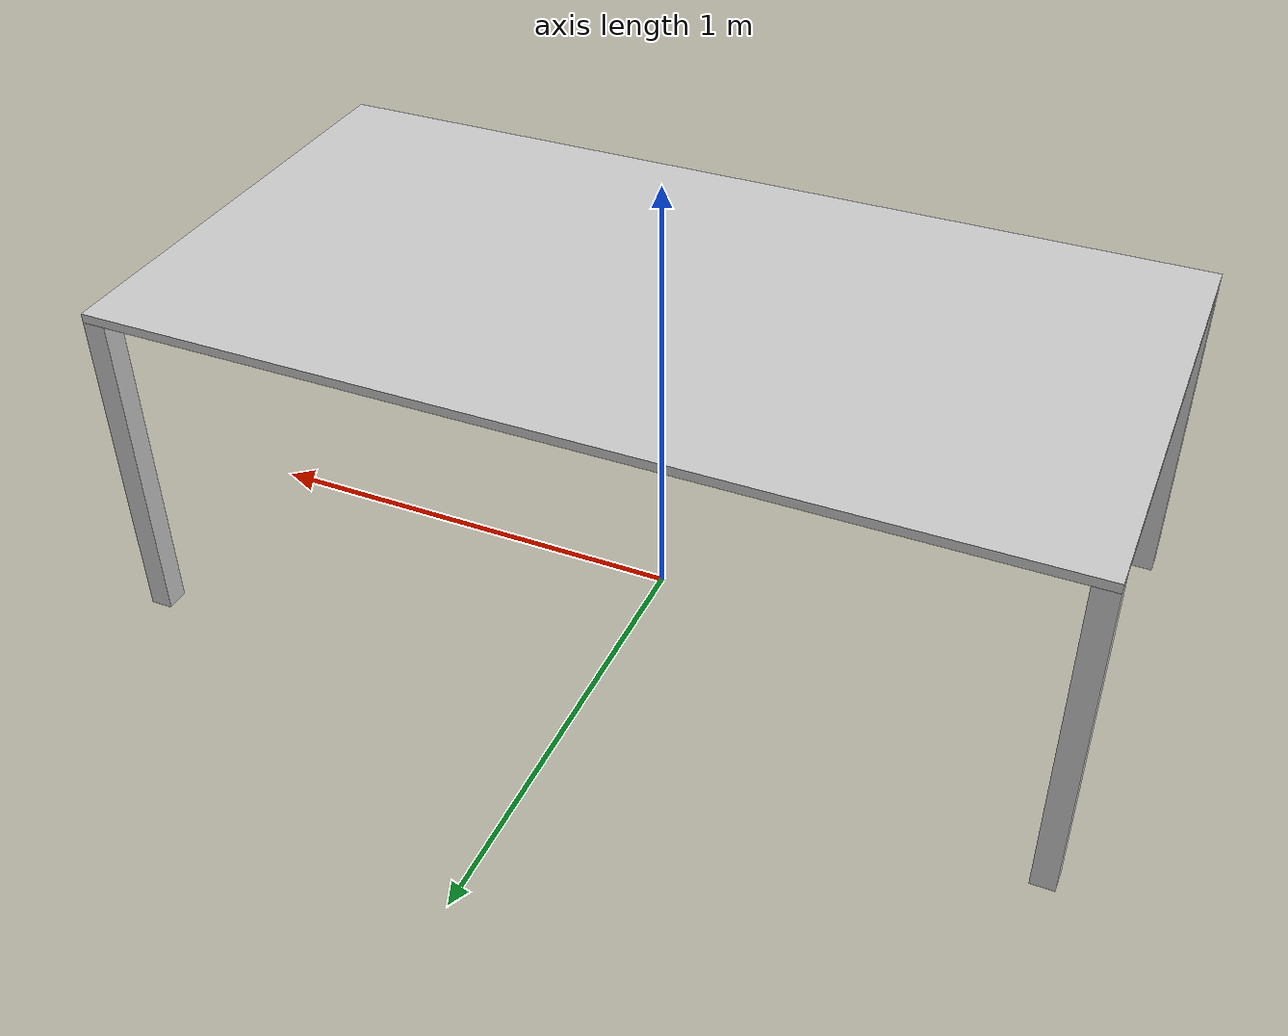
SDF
<?xml version="1.0"?>
<sdf version="1.6">
  <model name="table_205x105x76">
    <link name="1_link">
      <collision name="1_col">
        <geometry>
          <box>
            <size>2.05 1.05 0.02</size>
          </box>
        </geometry>
      </collision>
      <visual name="1_vis">
        <geometry>
          <box>
            <size>2.05 1.05 0.02</size>
          </box>
        </geometry>
        <material>
          <ambient>0.8 0.8 0.8 1</ambient>
        </material>
      </visual>
      <pose>0.0 0.0 0.75 0 0 0</pose>
    </link>
    <link name="2_link">
      <collision name="2_col">
        <geometry>
          <box>
            <size>0.05 0.05 0.74</size>
          </box>
        </geometry>
      </collision>
      <visual name="2_vis">
        <geometry>
          <box>
            <size>0.05 0.05 0.74</size>
          </box>
        </geometry>
        <material>
          <ambient>0.8 0.8 0.8 1</ambient>
        </material>
      </visual>
      <pose>-1.0 -0.5 0.37 0 0 0</pose>
    </link>
    <link name="3_link">
      <collision name="3_col">
        <geometry>
          <box>
            <size>0.05 0.05 0.74</size>
          </box>
        </geometry>
      </collision>
      <visual name="3_vis">
        <geometry>
          <box>
            <size>0.05 0.05 0.74</size>
          </box>
        </geometry>
        <material>
          <ambient>0.8 0.8 0.8 1</ambient>
        </material>
      </visual>
      <pose>1.0 -0.5 0.37 0 0 0</pose>
    </link>
    <link name="4_link">
      <collision name="4_col">
        <geometry>
          <box>
            <size>0.05 0.05 0.74</size>
          </box>
        </geometry>
      </collision>
      <visual name="4_vis">
        <geometry>
          <box>
            <size>0.05 0.05 0.74</size>
          </box>
        </geometry>
        <material>
          <ambient>0.8 0.8 0.8 1</ambient>
        </material>
      </visual>
      <pose>-1.0 0.5 0.37 0 0 0</pose>
    </link>
    <link name="5_link">
      <collision name="5_col">
        <geometry>
          <box>
            <size>0.05 0.05 0.74</size>
          </box>
        </geometry>
      </collision>
      <visual name="5_vis">
        <geometry>
          <box>
            <size>0.05 0.05 0.74</size>
          </box>
        </geometry>
        <material>
          <ambient>0.8 0.8 0.8 1</ambient>
        </material>
      </visual>
      <pose>1.0 0.5 0.37 0 0 0</pose>
    </link>
    <static>true</static>
  </model>
</sdf>
